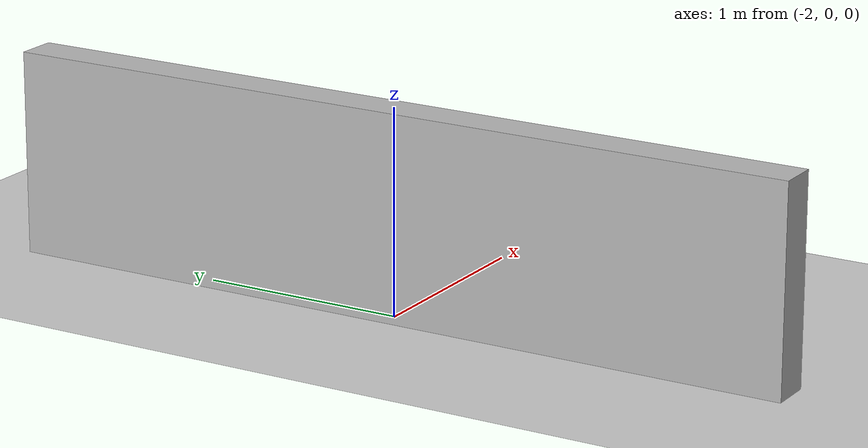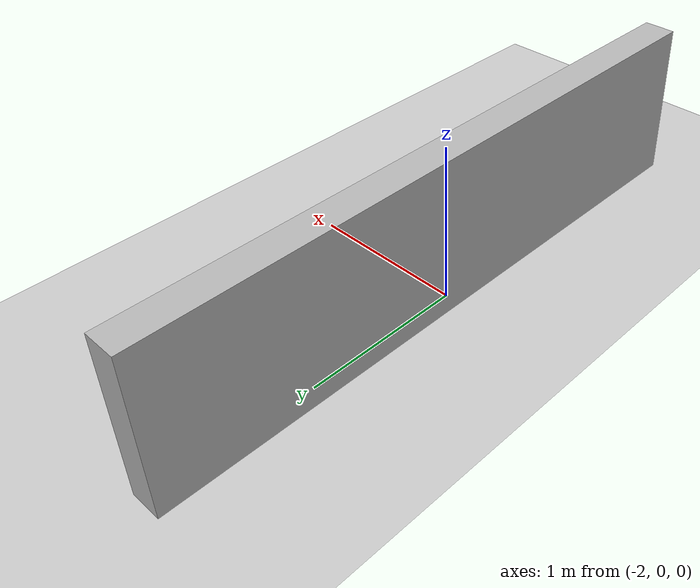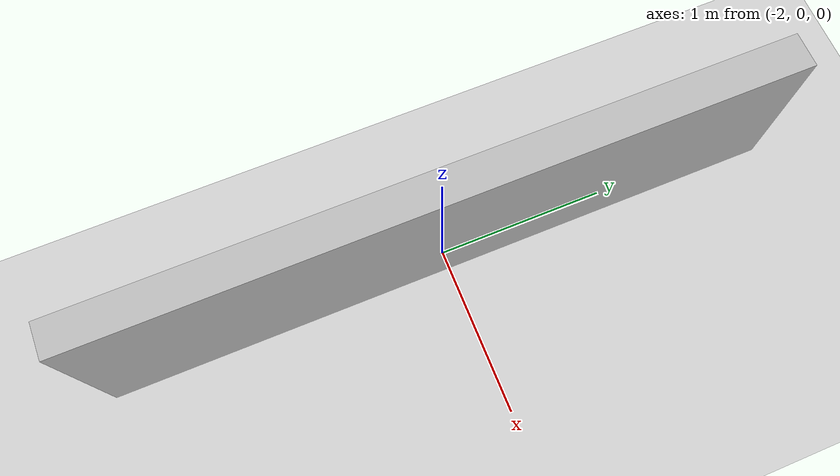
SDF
<?xml version="1.0" ?>
<sdf version="1.7">
  <world name="simple_world">
    <include>
      <uri>model://ground_plane</uri>
    </include>
    <include>
      <uri>model://sun</uri>
    </include>
    <model name="wall1">
      <pose>-2 0 0.5 0 0 0</pose>
      <link name="wall_link">
        <collision name="collision">
          <geometry>
            <box>
              <size>0.2 4 1</size>
            </box>
          </geometry>
        </collision>
        <visual name="visual">
          <geometry>
            <box>
              <size>0.2 4 1</size>
            </box>
          </geometry>
        </visual>
      </link>
    </model>
  </world>
</sdf>
